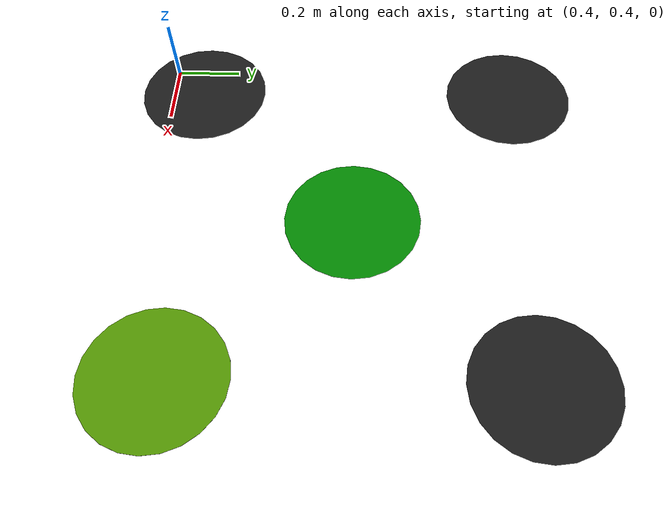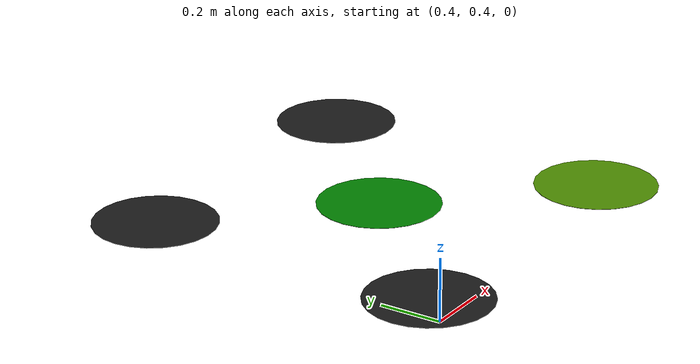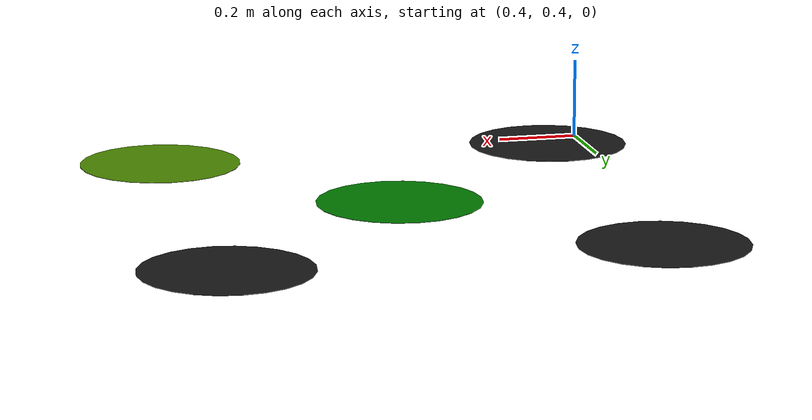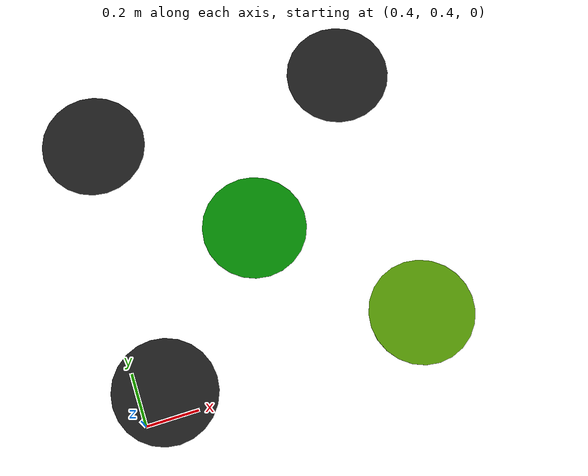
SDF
<?xml version="1.0" ?>
<sdf version="1.7">
  <model name="forest_5_ball_state_19">
    <pose>0 0 0.01 0 0 0</pose>
    <static>true</static>

    <!-- Top-left ball -->
    <link name="tree_1">
      <pose>0.5 1.5 -0.0005 0 0 0</pose>
      <visual name="tree_1_visual">
        <geometry>
          <cylinder>
            <radius>0.2</radius>
            <length>0.001</length>
          </cylinder>
        </geometry>
        <material>
          <ambient>0.1 0.1 0.1 1</ambient>
          <diffuse>0.1 0.1 0.1 1</diffuse>
        </material>
      </visual>
    </link>

    <!-- Top-right ball -->
    <link name="tree_2">
      <pose>1.5 1.5 -0.0005 0 0 0</pose>
      <visual name="tree_2_visual">
        <geometry>
          <cylinder>
            <radius>0.2</radius>
            <length>0.001</length>
          </cylinder>
        </geometry>
        <material>
          <ambient>0.1 0.1 0.1 1</ambient>
          <diffuse>0.1 0.1 0.1 1</diffuse>
        </material>
      </visual>
    </link>

    <!-- Bottom-left ball -->
    <link name="tree_3">
      <pose>0.5 0.5 -0.0005 0 0 0</pose>
      <visual name="tree_3_visual">
        <geometry>
          <cylinder>
            <radius>0.2</radius>
            <length>0.001</length>
          </cylinder>
        </geometry>
        <material>
          <ambient>0.1 0.1 0.1 1</ambient>
          <diffuse>0.1 0.1 0.1 1</diffuse>
        </material>
      </visual>
    </link>

    <!-- Bottom-right ball -->
    <link name="tree_4">
      <pose>1.5 0.5 -0.0005 0 0 0</pose>
      <visual name="tree_4_visual">
        <geometry>
          <cylinder>
            <radius>0.2</radius>
            <length>0.001</length>
          </cylinder>
        </geometry>
        <material>
          <ambient>0.3 0.55 0.0 1</ambient>
          <diffuse>0.3 0.55 0.0 1</diffuse>
        </material>
      </visual>
    </link>

    <!-- Center ball -->
    <link name="tree_5">
      <pose>1.0 1.0 -0.0005 0 0 0</pose>
      <visual name="tree_5_visual">
        <geometry>
          <cylinder>
            <radius>0.2</radius>
            <length>0.001</length>
          </cylinder>
        </geometry>
        <material>
          <ambient>0.0 0.5 0.0 1</ambient>
          <diffuse>0.0 0.5 0.0 1</diffuse>
        </material>
      </visual>
    </link>

  </model>
</sdf>
